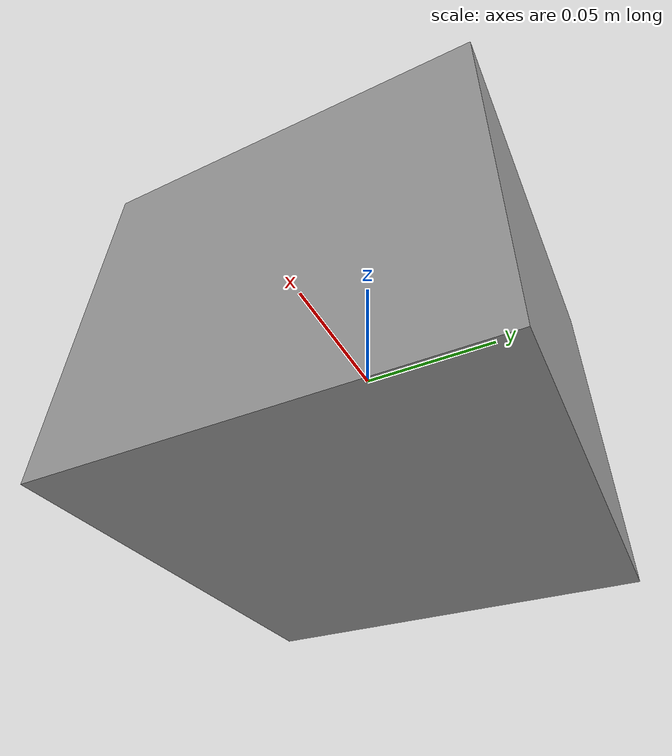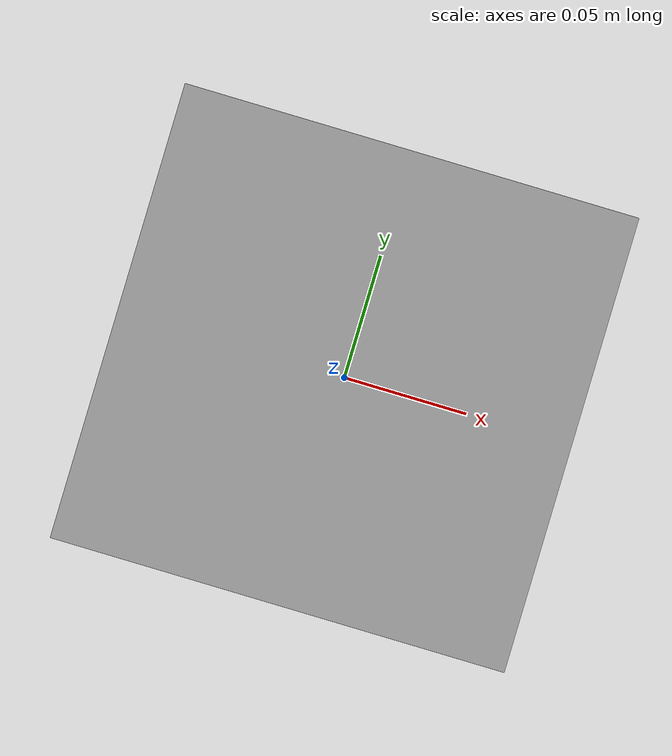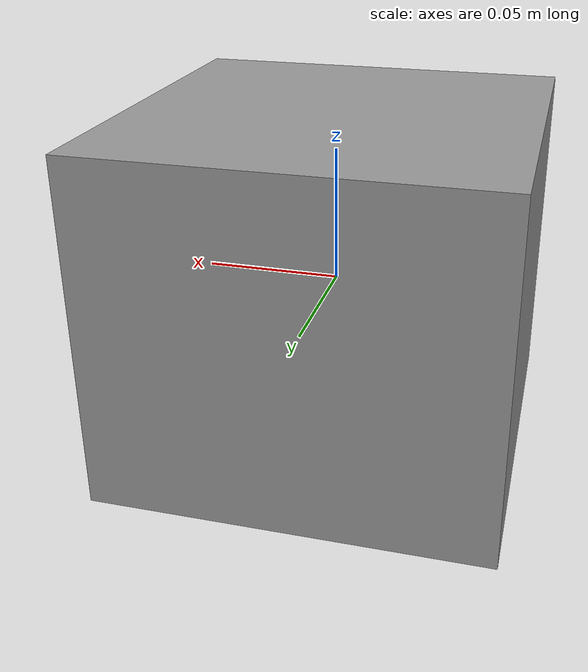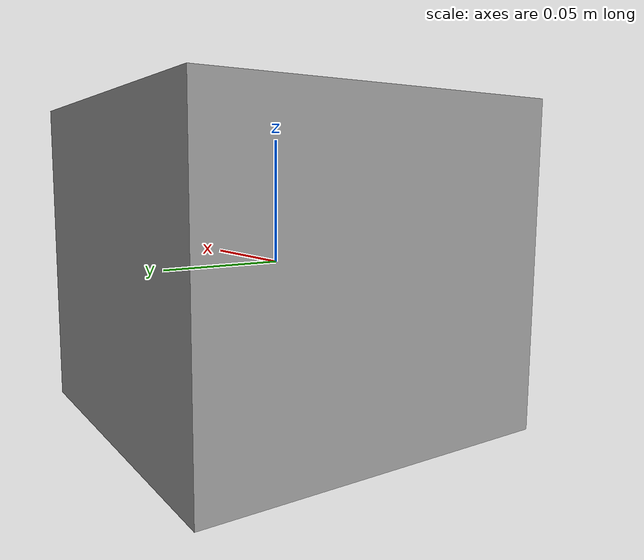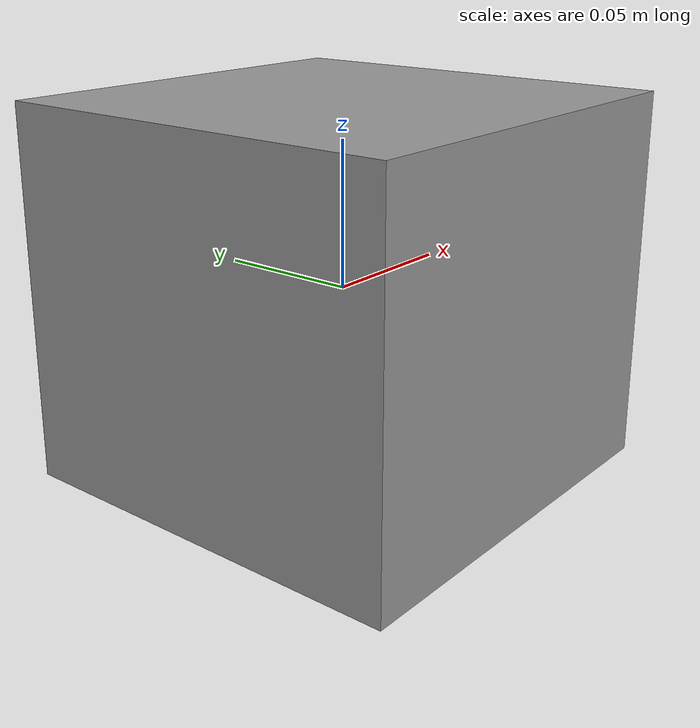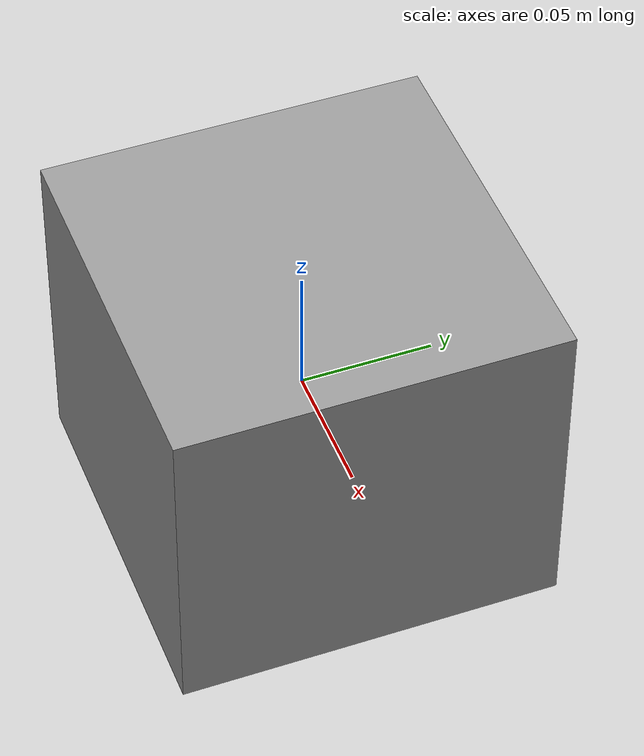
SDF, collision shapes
<?xml version="1.0" ?>

  <sdf version="1.5">
    <model name="usl_bicopter">

      <include>
        <uri>model://usl_bicopter_base</uri>
        <name>usl_bicopter_base</name>
        <pose>0 0 0.0 0 0 0</pose>
      </include>

      <include>
        <uri>model://usl_bicopter_tilt</uri>
        <name>usl_bicopter_tilt_0</name>
        <pose relative_to="usl_bicopter_tilt_0_joint">0 0 0 0 0 0</pose>
      </include>
      <joint name = "usl_bicopter_tilt_0_joint" type="revolute">
        <pose relative_to="usl_bicopter_base::base">0.0 -0.15949 0.09516 0 0 3.141592653589793</pose>
        <parent>usl_bicopter_base::base</parent>
        <child>usl_bicopter_tilt_0::tilt</child>
        <axis>
          <xyz>0 -1 0</xyz>
          <limit>
            <lower>-1e+16</lower>
            <upper>1e+16</upper>
          </limit>
          <dynamics>
            <damping>0.1</damping>
            <spring_stiffness>0</spring_stiffness>
            <spring_reference>0</spring_reference>
          </dynamics>
          <use_parent_model_frame>1</use_parent_model_frame>
        </axis>
        <physics>
          <ode>
            <implicit_spring_damper>1</implicit_spring_damper>
          </ode>
        </physics>
      </joint>

      <include>
        <uri>model://usl_bicopter_tilt</uri>
        <name>usl_bicopter_tilt_1</name>
        <pose relative_to="usl_bicopter_tilt_1_joint">0 0 0 0 0 0</pose>
      </include>
      <joint name = "usl_bicopter_tilt_1_joint" type="revolute">
        <pose relative_to="usl_bicopter_base::base">0.0 0.15949 0.09516 0 0 0</pose>
        <parent>usl_bicopter_base::base</parent>
        <child>usl_bicopter_tilt_1::tilt</child>
        <axis>
          <xyz>0 1 0</xyz>
          <limit>
            <lower>-1e+16</lower>
            <upper>1e+16</upper>
          </limit>
          <dynamics>
            <damping>0.1</damping>
            <spring_stiffness>0</spring_stiffness>
            <spring_reference>0</spring_reference>
          </dynamics>
          <use_parent_model_frame>1</use_parent_model_frame>
        </axis>
        <physics>
          <ode>
            <implicit_spring_damper>1</implicit_spring_damper>
          </ode>
        </physics>
      </joint>

  <include>
    <uri>model://usl_bicopter_prop</uri>
    <name>usl_bicopter_prop_0</name>
    <pose relative_to="usl_bicopter_prop_0_joint">0 0 0 0 0 0</pose>
  </include>
  <joint name = "usl_bicopter_prop_0_joint" type="revolute">
    <pose relative_to="usl_bicopter_tilt_0::tilt">0.0 -0.0 0.05 0 0 0</pose>
    <parent>usl_bicopter_tilt_0::tilt</parent>
    <child>usl_bicopter_prop_0::prop</child>
    <axis>
      <xyz>0 0 1</xyz>
      <limit>
        <lower>-1e+16</lower>
        <upper>1e+16</upper>
      </limit>
      <dynamics>
        <damping>0.004</damping>
      </dynamics>
      <use_parent_model_frame>1</use_parent_model_frame>
    </axis>
    <physics>
      <ode>
        <implicit_spring_damper>1</implicit_spring_damper>
      </ode>
    </physics>
  </joint>

  <include>
    <uri>model://usl_bicopter_prop</uri>
    <name>usl_bicopter_prop_1</name>
    <pose relative_to="usl_bicopter_prop_1_joint">0 0 0 0 0 0</pose>
  </include>
  <joint name = "usl_bicopter_prop_1_joint" type="revolute">
    <pose relative_to="usl_bicopter_tilt_1::tilt">0.0 0.0 0.05 0 0 0</pose>
    <parent>usl_bicopter_tilt_1::tilt</parent>
    <child>usl_bicopter_prop_1::prop</child>
    <axis>
      <xyz>0 0 1</xyz>
      <limit>
        <lower>-1e+16</lower>
        <upper>1e+16</upper>
      </limit>
      <dynamics>
        <damping>0.004</damping>
      </dynamics>
      <use_parent_model_frame>1</use_parent_model_frame>
    </axis>
    <physics>
      <ode>
        <implicit_spring_damper>1</implicit_spring_damper>
      </ode>
    </physics>
  </joint>

</model>
</sdf>

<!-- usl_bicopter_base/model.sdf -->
<sdf version="1.5">
    <model name="usl_bicopter_base">

      <link name="base">
      <pose>0 0 0.0  0 0 0</pose>
      <inertial>
        <pose>0 0 0 0 0 0</pose>
        <mass>1.0</mass>
        <inertia>
          <ixx>0.1</ixx>
          <iyy>0.2</iyy>
          <izz>0.1</izz>
          <ixy>0</ixy>
          <ixz>0</ixz>
          <iyz>0</iyz>
        </inertia>
      </inertial>
      <collision name="base_collision">
        <pose>0 0 0  0 0 0</pose>
        <geometry>
          <box>
            <size>0.144 0.144 0.128</size>
          </box>
        </geometry>
        <surface>
          <contact>
            <ode/>
          </contact>
          <friction>
            <ode/>
          </friction>
        </surface>
      </collision>
      <visual name="base_visual">
        <geometry>
          <mesh>
            <uri>model://usl_bicopter_base/meshes/body.STL</uri>
          </mesh>
        </geometry>
        <material>
          <script>
            <name>Gazebo/Grey</name>
          </script>
        </material>
      </visual>
    </link>
    <link name='imu_link'>
    <inertial>
      <pose>0 0 0 0 0 0</pose>
      <mass>0.15</mass>
      <inertia>
        <ixx>0.00001</ixx>
        <ixy>0</ixy>
        <ixz>0</ixz>
        <iyy>0.00002</iyy>
        <iyz>0</iyz>
        <izz>0.00002</izz>
      </inertia>
    </inertial>
    <sensor name="imu_sensor" type="imu">
      <pose>0 0 0 3.141593 0 0</pose>
      <always_on>1</always_on>
      <update_rate>1000.0</update_rate>
      <topic>__default_topic__</topic>
    </sensor>
  </link>
  <joint name='imu_joint' type='revolute'>
    <child>imu_link</child>
    <parent>base</parent>
    <axis>
      <xyz>0 0 1</xyz>
      <limit>
        <lower>-0.0001</lower>
        <upper>0.00001</upper>
        <effort>0</effort>
        <velocity>0</velocity>
      </limit>
      <dynamics>
        <damping>1.0</damping>
      </dynamics>
      <use_parent_model_frame>1</use_parent_model_frame>
    </axis>
    <physics>
      <ode>
        <implicit_spring_damper>1</implicit_spring_damper>
      </ode>
    </physics>
  </joint>

</model>
</sdf>

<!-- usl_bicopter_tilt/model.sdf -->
<sdf version="1.5">
    <model name="usl_bicopter_tilt">
      <link name='tilt'>
      <pose>0.0 -0.0 0.0 0 -0 0</pose>
      <inertial>
        <pose>0 0 0 0 -0 0</pose>
        <mass>0.001</mass>
        <inertia>
          <ixx>0.001</ixx>
          <ixy>0</ixy>
          <ixz>0</ixz>
          <iyy>0.001</iyy>
          <iyz>0</iyz>
          <izz>0.001</izz>
        </inertia>
      </inertial>
      <collision name='tilt_collision'>
        <pose>0 0 0 0 -0 0</pose>
        <geometry>
          <box>
            <size>0.0 0.0 0.0</size>
          </box>
        </geometry>
        <max_contacts>1</max_contacts>
      </collision>
      <visual name='tilt_visual'>
        <pose>0 0 0 0 -0 0</pose>
        <geometry>
          <mesh>
            <uri>model://usl_bicopter_tilt/meshes/tilt.STL</uri>
          </mesh>
        </geometry>
        <material>
          <script>
            <name>Gazebo/Blue</name>
            <uri>__default__</uri>
          </script>
        </material>
      </visual>
      <gravity>1</gravity>
      <velocity_decay />
      <self_collide>0</self_collide>
    </link>
  </model>
</sdf>

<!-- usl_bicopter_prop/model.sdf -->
<sdf version="1.5">
    <model name="usl_bicopter_prop">
      <link name='prop'>
      <pose>0.0 -0.0 0.0 0 -0 0</pose>
      <inertial>
        <pose>0 0 0 0 -0 0</pose>
        <mass>0.001</mass>
        <inertia>
          <ixx>0.001</ixx>
          <ixy>0</ixy>
          <ixz>0</ixz>
          <iyy>0.001</iyy>
          <iyz>0</iyz>
          <izz>0.001</izz>
        </inertia>
      </inertial>
      <collision name='prop_collision'>
        <pose>0 0 0 0 -0 0</pose>
        <geometry>
          <box>
            <size>0.001 0.001 0.001</size>
          </box>
        </geometry>
        <max_contacts>1</max_contacts>
      </collision>
      <visual name='prop_visual'>
        <pose>0 0 0 0 -0 0</pose>
        <geometry>
          <mesh>
            <uri>model://usl_bv2_prop/meshes/prop.STL</uri>
          </mesh>
        </geometry>
        <material>
          <script>
            <name>Gazebo/Blue</name>
            <uri>__default__</uri>
          </script>
        </material>
      </visual>
      <gravity>1</gravity>
      <velocity_decay />
      <self_collide>0</self_collide>
    </link>
  </model>
</sdf>
